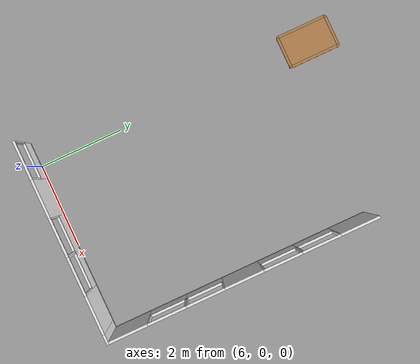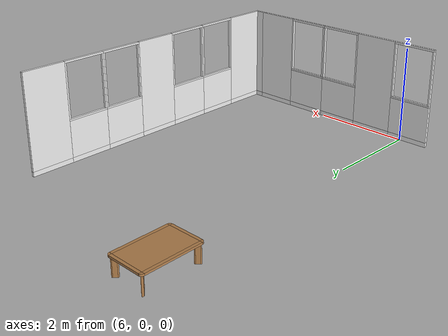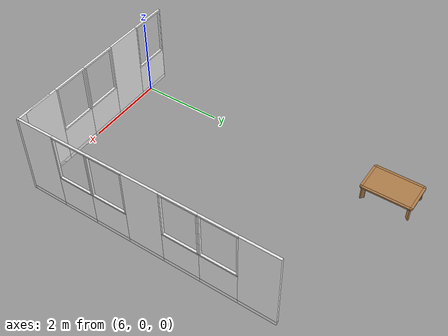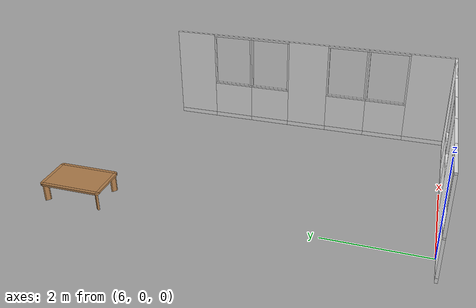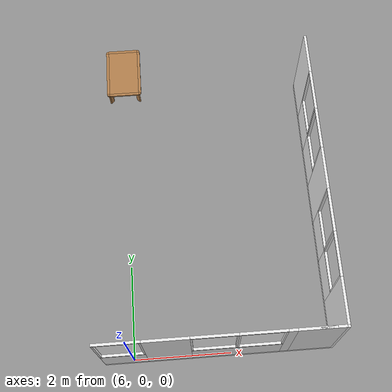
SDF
<sdf version="1.4">
 <world name="apartment">
  <model name="wall_x07y00">
   <link name="link">
    <inertial>
     <mass>50</mass>
     <inertia><ixx>1</ixx><ixy>0</ixy><ixz>0</ixz><iyy>1</iyy><iyz>0</iyz><izz>1</izz></inertia>
    </inertial>
    <visual name="bottom_frame">
     <pose>0 0 0.05 0 -0 0</pose>
     <geometry><box><size>0.055 0.9 0.1</size></box></geometry>
     <material>
      <script><uri>model://base_materials/color/scripts</uri><name>hsr_color/white</name></script>
     </material>
    </visual>
    <collision name="collision_bottom_frame">
     <pose>0 0 0.05 0 -0 0</pose>
     <geometry><box><size>0.055 0.9 0.1</size></box></geometry>
    </collision>
    <visual name="wall">
     <pose>0 0 0.4875 0 -0 0</pose>
     <geometry><box><size>0.055 0.9 0.775</size></box></geometry>
     <material>
      <script>
       <uri>model://base_materials/wall/scripts</uri>
       <uri>model://base_materials/wall/textures</uri>
       <name>wall/white_noise</name>
      </script>
     </material>
    </visual>
    <collision name="collision_wall">
     <pose>0 0 0.4875 0 -0 0</pose>
     <geometry><box><size>0.055 0.9 0.775</size></box></geometry>
    </collision>
    <visual name="center_frame">
     <pose>0 0 0.8925 0 -0 0</pose>
     <geometry><box><size>0.055 0.9 0.035</size></box></geometry>
     <material>
      <script><uri>model://base_materials/color/scripts</uri><name>hsr_color/white</name></script>
     </material>
    </visual>
    <collision name="collision_center_frame">
     <pose>0 0 0.8925 0 -0 0</pose>
     <geometry><box><size>0.055 0.9 0.035</size></box></geometry>
    </collision>
    <visual name="right_frame">
     <pose>0 0.4325 1.48 0 -0 0</pose>
     <geometry><box><size>0.055 0.035 1.14</size></box></geometry>
     <material>
      <script><uri>model://base_materials/color/scripts</uri><name>hsr_color/white</name></script>
     </material>
    </visual>
    <collision name="collision_right_frame">
     <pose>0 0.4325 1.48 0 -0 0</pose>
     <geometry><box><size>0.055 0.035 1.14</size></box></geometry>
    </collision>
    <visual name="left_frame">
     <pose>0 -0.4325 1.48 0 -0 0</pose>
     <geometry><box><size>0.055 0.035 1.14</size></box></geometry>
     <material>
      <script><uri>model://base_materials/color/scripts</uri><name>hsr_color/white</name></script>
     </material>
    </visual>
    <collision name="collision_left_frame">
     <pose>0 -0.4325 1.48 0 -0 0</pose>
     <geometry><box><size>0.055 0.035 1.14</size></box></geometry>
    </collision>
    <visual name="top_frame">
     <pose>0 0 2.07 0 -0 0</pose>
     <geometry><box><size>0.055 0.9 0.04</size></box></geometry>
     <material>
      <script><uri>model://base_materials/color/scripts</uri><name>hsr_color/white</name></script>
     </material>
    </visual>
    <collision name="collision_top_frame">
     <pose>0 0 2.07 0 -0 0</pose>
     <geometry><box><size>0.055 0.9 0.04</size></box></geometry>
    </collision>
    <velocity_decay><linear>0</linear><angular>0</angular></velocity_decay>
   </link>
   <static>1</static>
   <pose>5.85 -0.0275 0 0 -0 1.5708</pose>
  </model>
  <model name="wall_x08y00">
   <link name="link">
    <inertial>
     <mass>50</mass>
     <inertia><ixx>1</ixx><ixy>0</ixy><ixz>0</ixz><iyy>1</iyy><iyz>0</iyz><izz>1</izz></inertia>
    </inertial>
    <visual name="bottom_frame">
     <pose>0 0 0.05 0 -0 0</pose>
     <geometry><box><size>0.055 0.9 0.1</size></box></geometry>
     <material>
      <script><uri>model://base_materials/color/scripts</uri><name>hsr_color/white</name></script>
     </material>
    </visual>
    <collision name="collision_bottom_frame">
     <pose>0 0 0.05 0 -0 0</pose>
     <geometry><box><size>0.055 0.9 0.1</size></box></geometry>
    </collision>
    <visual name="wall">
     <pose>0 0 1.095 0 -0 0</pose>
     <geometry><box><size>0.055 0.9 1.99</size></box></geometry>
     <material>
      <script>
       <uri>model://base_materials/wall/scripts</uri>
       <uri>model://base_materials/wall/textures</uri>
       <name>wall/white_noise</name>
      </script>
     </material>
    </visual>
    <collision name="collision_wall">
     <pose>0 0 1.095 0 -0 0</pose>
     <geometry><box><size>0.055 0.9 1.99</size></box></geometry>
    </collision>
    <velocity_decay><linear>0</linear><angular>0</angular></velocity_decay>
   </link>
   <static>1</static>
   <pose>6.75 -0.0275 0 0 -0 1.5708</pose>
  </model>
  <model name="wall_x09y00">
   <link name="link">
    <inertial>
     <mass>50</mass>
     <inertia><ixx>1</ixx><ixy>0</ixy><ixz>0</ixz><iyy>1</iyy><iyz>0</iyz><izz>1</izz></inertia>
    </inertial>
    <visual name="bottom_frame">
     <pose>0 0 0.05 0 -0 0</pose>
     <geometry><box><size>0.055 0.9 0.1</size></box></geometry>
     <material>
      <script><uri>model://base_materials/color/scripts</uri><name>hsr_color/white</name></script>
     </material>
    </visual>
    <collision name="collision_bottom_frame">
     <pose>0 0 0.05 0 -0 0</pose>
     <geometry><box><size>0.055 0.9 0.1</size></box></geometry>
    </collision>
    <visual name="wall">
     <pose>0 0 0.4875 0 -0 0</pose>
     <geometry><box><size>0.055 0.9 0.775</size></box></geometry>
     <material>
      <script>
       <uri>model://base_materials/wall/scripts</uri>
       <uri>model://base_materials/wall/textures</uri>
       <name>wall/white_noise</name>
      </script>
     </material>
    </visual>
    <collision name="collision_wall">
     <pose>0 0 0.4875 0 -0 0</pose>
     <geometry><box><size>0.055 0.9 0.775</size></box></geometry>
    </collision>
    <visual name="center_frame">
     <pose>0 0 0.8925 0 -0 0</pose>
     <geometry><box><size>0.055 0.9 0.035</size></box></geometry>
     <material>
      <script><uri>model://base_materials/color/scripts</uri><name>hsr_color/white</name></script>
     </material>
    </visual>
    <collision name="collision_center_frame">
     <pose>0 0 0.8925 0 -0 0</pose>
     <geometry><box><size>0.055 0.9 0.035</size></box></geometry>
    </collision>
    <visual name="right_frame">
     <pose>0 0.4325 1.48 0 -0 0</pose>
     <geometry><box><size>0.055 0.035 1.14</size></box></geometry>
     <material>
      <script><uri>model://base_materials/color/scripts</uri><name>hsr_color/white</name></script>
     </material>
    </visual>
    <collision name="collision_right_frame">
     <pose>0 0.4325 1.48 0 -0 0</pose>
     <geometry><box><size>0.055 0.035 1.14</size></box></geometry>
    </collision>
    <visual name="left_frame">
     <pose>0 -0.4325 1.48 0 -0 0</pose>
     <geometry><box><size>0.055 0.035 1.14</size></box></geometry>
     <material>
      <script><uri>model://base_materials/color/scripts</uri><name>hsr_color/white</name></script>
     </material>
    </visual>
    <collision name="collision_left_frame">
     <pose>0 -0.4325 1.48 0 -0 0</pose>
     <geometry><box><size>0.055 0.035 1.14</size></box></geometry>
    </collision>
    <visual name="top_frame">
     <pose>0 0 2.07 0 -0 0</pose>
     <geometry><box><size>0.055 0.9 0.04</size></box></geometry>
     <material>
      <script><uri>model://base_materials/color/scripts</uri><name>hsr_color/white</name></script>
     </material>
    </visual>
    <collision name="collision_top_frame">
     <pose>0 0 2.07 0 -0 0</pose>
     <geometry><box><size>0.055 0.9 0.04</size></box></geometry>
    </collision>
    <velocity_decay><linear>0</linear><angular>0</angular></velocity_decay>
   </link>
   <static>1</static>
   <pose>7.65 -0.0275 0 0 -0 1.5708</pose>
  </model>
  <model name="wall_x10y00">
   <link name="link">
    <inertial>
     <mass>50</mass>
     <inertia><ixx>1</ixx><ixy>0</ixy><ixz>0</ixz><iyy>1</iyy><iyz>0</iyz><izz>1</izz></inertia>
    </inertial>
    <visual name="bottom_frame">
     <pose>0 0 0.05 0 -0 0</pose>
     <geometry><box><size>0.055 0.9 0.1</size></box></geometry>
     <material>
      <script><uri>model://base_materials/color/scripts</uri><name>hsr_color/white</name></script>
     </material>
    </visual>
    <collision name="collision_bottom_frame">
     <pose>0 0 0.05 0 -0 0</pose>
     <geometry><box><size>0.055 0.9 0.1</size></box></geometry>
    </collision>
    <visual name="wall">
     <pose>0 0 0.4875 0 -0 0</pose>
     <geometry><box><size>0.055 0.9 0.775</size></box></geometry>
     <material>
      <script>
       <uri>model://base_materials/wall/scripts</uri>
       <uri>model://base_materials/wall/textures</uri>
       <name>wall/white_noise</name>
      </script>
     </material>
    </visual>
    <collision name="collision_wall">
     <pose>0 0 0.4875 0 -0 0</pose>
     <geometry><box><size>0.055 0.9 0.775</size></box></geometry>
    </collision>
    <visual name="center_frame">
     <pose>0 0 0.8925 0 -0 0</pose>
     <geometry><box><size>0.055 0.9 0.035</size></box></geometry>
     <material>
      <script><uri>model://base_materials/color/scripts</uri><name>hsr_color/white</name></script>
     </material>
    </visual>
    <collision name="collision_center_frame">
     <pose>0 0 0.8925 0 -0 0</pose>
     <geometry><box><size>0.055 0.9 0.035</size></box></geometry>
    </collision>
    <visual name="right_frame">
     <pose>0 0.4325 1.48 0 -0 0</pose>
     <geometry><box><size>0.055 0.035 1.14</size></box></geometry>
     <material>
      <script><uri>model://base_materials/color/scripts</uri><name>hsr_color/white</name></script>
     </material>
    </visual>
    <collision name="collision_right_frame">
     <pose>0 0.4325 1.48 0 -0 0</pose>
     <geometry><box><size>0.055 0.035 1.14</size></box></geometry>
    </collision>
    <visual name="left_frame">
     <pose>0 -0.4325 1.48 0 -0 0</pose>
     <geometry><box><size>0.055 0.035 1.14</size></box></geometry>
     <material>
      <script><uri>model://base_materials/color/scripts</uri><name>hsr_color/white</name></script>
     </material>
    </visual>
    <collision name="collision_left_frame">
     <pose>0 -0.4325 1.48 0 -0 0</pose>
     <geometry><box><size>0.055 0.035 1.14</size></box></geometry>
    </collision>
    <visual name="top_frame">
     <pose>0 0 2.07 0 -0 0</pose>
     <geometry><box><size>0.055 0.9 0.04</size></box></geometry>
     <material>
      <script><uri>model://base_materials/color/scripts</uri><name>hsr_color/white</name></script>
     </material>
    </visual>
    <collision name="collision_top_frame">
     <pose>0 0 2.07 0 -0 0</pose>
     <geometry><box><size>0.055 0.9 0.04</size></box></geometry>
    </collision>
    <velocity_decay><linear>0</linear><angular>0</angular></velocity_decay>
   </link>
   <static>1</static>
   <pose>8.55 -0.0275 0 0 -0 1.5708</pose>
  </model>
  <model name="wall_x11y00">
   <link name="link">
    <inertial>
     <mass>50</mass>
     <inertia><ixx>1</ixx><ixy>0</ixy><ixz>0</ixz><iyy>1</iyy><iyz>0</iyz><izz>1</izz></inertia>
    </inertial>
    <visual name="bottom_frame">
     <pose>0 0 0.05 0 -0 0</pose>
     <geometry><box><size>0.055 0.9 0.1</size></box></geometry>
     <material>
      <script><uri>model://base_materials/color/scripts</uri><name>hsr_color/white</name></script>
     </material>
    </visual>
    <collision name="collision_bottom_frame">
     <pose>0 0 0.05 0 -0 0</pose>
     <geometry><box><size>0.055 0.9 0.1</size></box></geometry>
    </collision>
    <visual name="wall">
     <pose>0 0 1.095 0 -0 0</pose>
     <geometry><box><size>0.055 0.9 1.99</size></box></geometry>
     <material>
      <script>
       <uri>model://base_materials/wall/scripts</uri>
       <uri>model://base_materials/wall/textures</uri>
       <name>wall/white_noise</name>
      </script>
     </material>
    </visual>
    <collision name="collision_wall">
     <pose>0 0 1.095 0 -0 0</pose>
     <geometry><box><size>0.055 0.9 1.99</size></box></geometry>
    </collision>
    <velocity_decay><linear>0</linear><angular>0</angular></velocity_decay>
   </link>
   <static>1</static>
   <pose>9.45 -0.0275 0 0 -0 1.5708</pose>
  </model>
  <model name="wall_x12y00">
   <link name="link">
    <inertial>
     <mass>50</mass>
     <inertia><ixx>1</ixx><ixy>0</ixy><ixz>0</ixz><iyy>1</iyy><iyz>0</iyz><izz>1</izz></inertia>
    </inertial>
    <visual name="bottom_frame">
     <pose>0 0 0.05 0 -0 0</pose>
     <geometry><box><size>0.055 0.9 0.1</size></box></geometry>
     <material>
      <script><uri>model://base_materials/color/scripts</uri><name>hsr_color/white</name></script>
     </material>
    </visual>
    <collision name="collision_bottom_frame">
     <pose>0 0 0.05 0 -0 0</pose>
     <geometry><box><size>0.055 0.9 0.1</size></box></geometry>
    </collision>
    <visual name="wall">
     <pose>0 0 1.095 0 -0 0</pose>
     <geometry><box><size>0.055 0.9 1.99</size></box></geometry>
     <material>
      <script>
       <uri>model://base_materials/wall/scripts</uri>
       <uri>model://base_materials/wall/textures</uri>
       <name>wall/white_noise</name>
      </script>
     </material>
    </visual>
    <collision name="collision_wall">
     <pose>0 0 1.095 0 -0 0</pose>
     <geometry><box><size>0.055 0.9 1.99</size></box></geometry>
    </collision>
    <velocity_decay><linear>0</linear><angular>0</angular></velocity_decay>
   </link>
   <static>1</static>
   <pose>9.625 -0.0275 0 0 -0 1.5708</pose>
  </model>
  <model name="wall_x13y00">
   <link name="link">
    <inertial>
     <mass>50</mass>
     <inertia><ixx>1</ixx><ixy>0</ixy><ixz>0</ixz><iyy>1</iyy><iyz>0</iyz><izz>1</izz></inertia>
    </inertial>
    <visual name="_frame">
     <pose>0 0 1.045 0 -0 0</pose>
     <geometry><box><size>0.055 0.055 2.09</size></box></geometry>
     <material>
      <script><uri>model://base_materials/color/scripts</uri><name>hsr_color/white</name></script>
     </material>
    </visual>
    <collision name="collision_frame">
     <pose>0 0 1.045 0 -0 0</pose>
     <geometry><box><size>0.055 0.055 2.09</size></box></geometry>
    </collision>
    <velocity_decay><linear>0</linear><angular>0</angular></velocity_decay>
   </link>
   <static>1</static>
   <pose>10.1025 -0.0275 0 0 -0 0</pose>
  </model>
  <model name="wall_x13y01">
   <link name="link">
    <inertial>
     <mass>50</mass>
     <inertia><ixx>1</ixx><ixy>0</ixy><ixz>0</ixz><iyy>1</iyy><iyz>0</iyz><izz>1</izz></inertia>
    </inertial>
    <visual name="bottom_frame">
     <pose>0 0 0.05 0 -0 0</pose>
     <geometry><box><size>0.055 0.9 0.1</size></box></geometry>
     <material>
      <script><uri>model://base_materials/color/scripts</uri><name>hsr_color/white</name></script>
     </material>
    </visual>
    <collision name="collision_bottom_frame">
     <pose>0 0 0.05 0 -0 0</pose>
     <geometry><box><size>0.055 0.9 0.1</size></box></geometry>
    </collision>
    <visual name="wall">
     <pose>0 0 1.095 0 -0 0</pose>
     <geometry><box><size>0.055 0.9 1.99</size></box></geometry>
     <material>
      <script>
       <uri>model://base_materials/wall/scripts</uri>
       <uri>model://base_materials/wall/textures</uri>
       <name>wall/white_noise</name>
      </script>
     </material>
    </visual>
    <collision name="collision_wall">
     <pose>0 0 1.095 0 -0 0</pose>
     <geometry><box><size>0.055 0.9 1.99</size></box></geometry>
    </collision>
    <velocity_decay><linear>0</linear><angular>0</angular></velocity_decay>
   </link>
   <static>1</static>
   <pose>10.1025 0.45 0 0 -0 0</pose>
  </model>
  <model name="wall_x13y02">
   <link name="link">
    <inertial>
     <mass>50</mass>
     <inertia><ixx>1</ixx><ixy>0</ixy><ixz>0</ixz><iyy>1</iyy><iyz>0</iyz><izz>1</izz></inertia>
    </inertial>
    <visual name="bottom_frame">
     <pose>0 0 0.05 0 -0 0</pose>
     <geometry><box><size>0.055 0.9 0.1</size></box></geometry>
     <material>
      <script><uri>model://base_materials/color/scripts</uri><name>hsr_color/white</name></script>
     </material>
    </visual>
    <collision name="collision_bottom_frame">
     <pose>0 0 0.05 0 -0 0</pose>
     <geometry><box><size>0.055 0.9 0.1</size></box></geometry>
    </collision>
    <visual name="wall">
     <pose>0 0 0.4875 0 -0 0</pose>
     <geometry><box><size>0.055 0.9 0.775</size></box></geometry>
     <material>
      <script>
       <uri>model://base_materials/wall/scripts</uri>
       <uri>model://base_materials/wall/textures</uri>
       <name>wall/white_noise</name>
      </script>
     </material>
    </visual>
    <collision name="collision_wall">
     <pose>0 0 0.4875 0 -0 0</pose>
     <geometry><box><size>0.055 0.9 0.775</size></box></geometry>
    </collision>
    <visual name="center_frame">
     <pose>0 0 0.8925 0 -0 0</pose>
     <geometry><box><size>0.055 0.9 0.035</size></box></geometry>
     <material>
      <script><uri>model://base_materials/color/scripts</uri><name>hsr_color/white</name></script>
     </material>
    </visual>
    <collision name="collision_center_frame">
     <pose>0 0 0.8925 0 -0 0</pose>
     <geometry><box><size>0.055 0.9 0.035</size></box></geometry>
    </collision>
    <visual name="right_frame">
     <pose>0 0.4325 1.48 0 -0 0</pose>
     <geometry><box><size>0.055 0.035 1.14</size></box></geometry>
     <material>
      <script><uri>model://base_materials/color/scripts</uri><name>hsr_color/white</name></script>
     </material>
    </visual>
    <collision name="collision_right_frame">
     <pose>0 0.4325 1.48 0 -0 0</pose>
     <geometry><box><size>0.055 0.035 1.14</size></box></geometry>
    </collision>
    <visual name="left_frame">
     <pose>0 -0.4325 1.48 0 -0 0</pose>
     <geometry><box><size>0.055 0.035 1.14</size></box></geometry>
     <material>
      <script><uri>model://base_materials/color/scripts</uri><name>hsr_color/white</name></script>
     </material>
    </visual>
    <collision name="collision_left_frame">
     <pose>0 -0.4325 1.48 0 -0 0</pose>
     <geometry><box><size>0.055 0.035 1.14</size></box></geometry>
    </collision>
    <visual name="top_frame">
     <pose>0 0 2.07 0 -0 0</pose>
     <geometry><box><size>0.055 0.9 0.04</size></box></geometry>
     <material>
      <script><uri>model://base_materials/color/scripts</uri><name>hsr_color/white</name></script>
     </material>
    </visual>
    <collision name="collision_top_frame">
     <pose>0 0 2.07 0 -0 0</pose>
     <geometry><box><size>0.055 0.9 0.04</size></box></geometry>
    </collision>
    <velocity_decay><linear>0</linear><angular>0</angular></velocity_decay>
   </link>
   <static>1</static>
   <pose>10.1025 1.35 0 0 -0 0</pose>
  </model>
  <model name="wall_x13y03">
   <link name="link">
    <inertial>
     <mass>50</mass>
     <inertia><ixx>1</ixx><ixy>0</ixy><ixz>0</ixz><iyy>1</iyy><iyz>0</iyz><izz>1</izz></inertia>
    </inertial>
    <visual name="bottom_frame">
     <pose>0 0 0.05 0 -0 0</pose>
     <geometry><box><size>0.055 0.9 0.1</size></box></geometry>
     <material>
      <script><uri>model://base_materials/color/scripts</uri><name>hsr_color/white</name></script>
     </material>
    </visual>
    <collision name="collision_bottom_frame">
     <pose>0 0 0.05 0 -0 0</pose>
     <geometry><box><size>0.055 0.9 0.1</size></box></geometry>
    </collision>
    <visual name="wall">
     <pose>0 0 0.4875 0 -0 0</pose>
     <geometry><box><size>0.055 0.9 0.775</size></box></geometry>
     <material>
      <script>
       <uri>model://base_materials/wall/scripts</uri>
       <uri>model://base_materials/wall/textures</uri>
       <name>wall/white_noise</name>
      </script>
     </material>
    </visual>
    <collision name="collision_wall">
     <pose>0 0 0.4875 0 -0 0</pose>
     <geometry><box><size>0.055 0.9 0.775</size></box></geometry>
    </collision>
    <visual name="center_frame">
     <pose>0 0 0.8925 0 -0 0</pose>
     <geometry><box><size>0.055 0.9 0.035</size></box></geometry>
     <material>
      <script><uri>model://base_materials/color/scripts</uri><name>hsr_color/white</name></script>
     </material>
    </visual>
    <collision name="collision_center_frame">
     <pose>0 0 0.8925 0 -0 0</pose>
     <geometry><box><size>0.055 0.9 0.035</size></box></geometry>
    </collision>
    <visual name="right_frame">
     <pose>0 0.4325 1.48 0 -0 0</pose>
     <geometry><box><size>0.055 0.035 1.14</size></box></geometry>
     <material>
      <script><uri>model://base_materials/color/scripts</uri><name>hsr_color/white</name></script>
     </material>
    </visual>
    <collision name="collision_right_frame">
     <pose>0 0.4325 1.48 0 -0 0</pose>
     <geometry><box><size>0.055 0.035 1.14</size></box></geometry>
    </collision>
    <visual name="left_frame">
     <pose>0 -0.4325 1.48 0 -0 0</pose>
     <geometry><box><size>0.055 0.035 1.14</size></box></geometry>
     <material>
      <script><uri>model://base_materials/color/scripts</uri><name>hsr_color/white</name></script>
     </material>
    </visual>
    <collision name="collision_left_frame">
     <pose>0 -0.4325 1.48 0 -0 0</pose>
     <geometry><box><size>0.055 0.035 1.14</size></box></geometry>
    </collision>
    <visual name="top_frame">
     <pose>0 0 2.07 0 -0 0</pose>
     <geometry><box><size>0.055 0.9 0.04</size></box></geometry>
     <material>
      <script><uri>model://base_materials/color/scripts</uri><name>hsr_color/white</name></script>
     </material>
    </visual>
    <collision name="collision_top_frame">
     <pose>0 0 2.07 0 -0 0</pose>
     <geometry><box><size>0.055 0.9 0.04</size></box></geometry>
    </collision>
    <velocity_decay><linear>0</linear><angular>0</angular></velocity_decay>
   </link>
   <static>1</static>
   <pose>10.1025 2.25 0 0 -0 0</pose>
  </model>
  <model name="wall_x13y04">
   <link name="link">
    <inertial>
     <mass>50</mass>
     <inertia><ixx>1</ixx><ixy>0</ixy><ixz>0</ixz><iyy>1</iyy><iyz>0</iyz><izz>1</izz></inertia>
    </inertial>
    <visual name="bottom_frame">
     <pose>0 0 0.05 0 -0 0</pose>
     <geometry><box><size>0.055 0.9 0.1</size></box></geometry>
     <material>
      <script><uri>model://base_materials/color/scripts</uri><name>hsr_color/white</name></script>
     </material>
    </visual>
    <collision name="collision_bottom_frame">
     <pose>0 0 0.05 0 -0 0</pose>
     <geometry><box><size>0.055 0.9 0.1</size></box></geometry>
    </collision>
    <visual name="wall">
     <pose>0 0 1.095 0 -0 0</pose>
     <geometry><box><size>0.055 0.9 1.99</size></box></geometry>
     <material>
      <script>
       <uri>model://base_materials/wall/scripts</uri>
       <uri>model://base_materials/wall/textures</uri>
       <name>wall/white_noise</name>
      </script>
     </material>
    </visual>
    <collision name="collision_wall">
     <pose>0 0 1.095 0 -0 0</pose>
     <geometry><box><size>0.055 0.9 1.99</size></box></geometry>
    </collision>
    <velocity_decay><linear>0</linear><angular>0</angular></velocity_decay>
   </link>
   <static>1</static>
   <pose>10.1025 3.15 0 0 -0 0</pose>
  </model>
  <model name="wall_x13y05">
   <link name="link">
    <inertial>
     <mass>50</mass>
     <inertia><ixx>1</ixx><ixy>0</ixy><ixz>0</ixz><iyy>1</iyy><iyz>0</iyz><izz>1</izz></inertia>
    </inertial>
    <visual name="bottom_frame">
     <pose>0 0 0.05 0 -0 0</pose>
     <geometry><box><size>0.055 0.9 0.1</size></box></geometry>
     <material>
      <script><uri>model://base_materials/color/scripts</uri><name>hsr_color/white</name></script>
     </material>
    </visual>
    <collision name="collision_bottom_frame">
     <pose>0 0 0.05 0 -0 0</pose>
     <geometry><box><size>0.055 0.9 0.1</size></box></geometry>
    </collision>
    <visual name="wall">
     <pose>0 0 0.4875 0 -0 0</pose>
     <geometry><box><size>0.055 0.9 0.775</size></box></geometry>
     <material>
      <script>
       <uri>model://base_materials/wall/scripts</uri>
       <uri>model://base_materials/wall/textures</uri>
       <name>wall/white_noise</name>
      </script>
     </material>
    </visual>
    <collision name="collision_wall">
     <pose>0 0 0.4875 0 -0 0</pose>
     <geometry><box><size>0.055 0.9 0.775</size></box></geometry>
    </collision>
    <visual name="center_frame">
     <pose>0 0 0.8925 0 -0 0</pose>
     <geometry><box><size>0.055 0.9 0.035</size></box></geometry>
     <material>
      <script><uri>model://base_materials/color/scripts</uri><name>hsr_color/white</name></script>
     </material>
    </visual>
    <collision name="collision_center_frame">
     <pose>0 0 0.8925 0 -0 0</pose>
     <geometry><box><size>0.055 0.9 0.035</size></box></geometry>
    </collision>
    <visual name="right_frame">
     <pose>0 0.4325 1.48 0 -0 0</pose>
     <geometry><box><size>0.055 0.035 1.14</size></box></geometry>
     <material>
      <script><uri>model://base_materials/color/scripts</uri><name>hsr_color/white</name></script>
     </material>
    </visual>
    <collision name="collision_right_frame">
     <pose>0 0.4325 1.48 0 -0 0</pose>
     <geometry><box><size>0.055 0.035 1.14</size></box></geometry>
    </collision>
    <visual name="left_frame">
     <pose>0 -0.4325 1.48 0 -0 0</pose>
     <geometry><box><size>0.055 0.035 1.14</size></box></geometry>
     <material>
      <script><uri>model://base_materials/color/scripts</uri><name>hsr_color/white</name></script>
     </material>
    </visual>
    <collision name="collision_left_frame">
     <pose>0 -0.4325 1.48 0 -0 0</pose>
     <geometry><box><size>0.055 0.035 1.14</size></box></geometry>
    </collision>
    <visual name="top_frame">
     <pose>0 0 2.07 0 -0 0</pose>
     <geometry><box><size>0.055 0.9 0.04</size></box></geometry>
     <material>
      <script><uri>model://base_materials/color/scripts</uri><name>hsr_color/white</name></script>
     </material>
    </visual>
    <collision name="collision_top_frame">
     <pose>0 0 2.07 0 -0 0</pose>
     <geometry><box><size>0.055 0.9 0.04</size></box></geometry>
    </collision>
    <velocity_decay><linear>0</linear><angular>0</angular></velocity_decay>
   </link>
   <static>1</static>
   <pose>10.1025 4.05 0 0 -0 0</pose>
  </model>
  <model name="wall_x13y06">
   <link name="link">
    <inertial>
     <mass>50</mass>
     <inertia><ixx>1</ixx><ixy>0</ixy><ixz>0</ixz><iyy>1</iyy><iyz>0</iyz><izz>1</izz></inertia>
    </inertial>
    <visual name="bottom_frame">
     <pose>0 0 0.05 0 -0 0</pose>
     <geometry><box><size>0.055 0.9 0.1</size></box></geometry>
     <material>
      <script><uri>model://base_materials/color/scripts</uri><name>hsr_color/white</name></script>
     </material>
    </visual>
    <collision name="collision_bottom_frame">
     <pose>0 0 0.05 0 -0 0</pose>
     <geometry><box><size>0.055 0.9 0.1</size></box></geometry>
    </collision>
    <visual name="wall">
     <pose>0 0 0.4875 0 -0 0</pose>
     <geometry><box><size>0.055 0.9 0.775</size></box></geometry>
     <material>
      <script>
       <uri>model://base_materials/wall/scripts</uri>
       <uri>model://base_materials/wall/textures</uri>
       <name>wall/white_noise</name>
      </script>
     </material>
    </visual>
    <collision name="collision_wall">
     <pose>0 0 0.4875 0 -0 0</pose>
     <geometry><box><size>0.055 0.9 0.775</size></box></geometry>
    </collision>
    <visual name="center_frame">
     <pose>0 0 0.8925 0 -0 0</pose>
     <geometry><box><size>0.055 0.9 0.035</size></box></geometry>
     <material>
      <script><uri>model://base_materials/color/scripts</uri><name>hsr_color/white</name></script>
     </material>
    </visual>
    <collision name="collision_center_frame">
     <pose>0 0 0.8925 0 -0 0</pose>
     <geometry><box><size>0.055 0.9 0.035</size></box></geometry>
    </collision>
    <visual name="right_frame">
     <pose>0 0.4325 1.48 0 -0 0</pose>
     <geometry><box><size>0.055 0.035 1.14</size></box></geometry>
     <material>
      <script><uri>model://base_materials/color/scripts</uri><name>hsr_color/white</name></script>
     </material>
    </visual>
    <collision name="collision_right_frame">
     <pose>0 0.4325 1.48 0 -0 0</pose>
     <geometry><box><size>0.055 0.035 1.14</size></box></geometry>
    </collision>
    <visual name="left_frame">
     <pose>0 -0.4325 1.48 0 -0 0</pose>
     <geometry><box><size>0.055 0.035 1.14</size></box></geometry>
     <material>
      <script><uri>model://base_materials/color/scripts</uri><name>hsr_color/white</name></script>
     </material>
    </visual>
    <collision name="collision_left_frame">
     <pose>0 -0.4325 1.48 0 -0 0</pose>
     <geometry><box><size>0.055 0.035 1.14</size></box></geometry>
    </collision>
    <visual name="top_frame">
     <pose>0 0 2.07 0 -0 0</pose>
     <geometry><box><size>0.055 0.9 0.04</size></box></geometry>
     <material>
      <script><uri>model://base_materials/color/scripts</uri><name>hsr_color/white</name></script>
     </material>
    </visual>
    <collision name="collision_top_frame">
     <pose>0 0 2.07 0 -0 0</pose>
     <geometry><box><size>0.055 0.9 0.04</size></box></geometry>
    </collision>
    <velocity_decay><linear>0</linear><angular>0</angular></velocity_decay>
   </link>
   <static>1</static>
   <pose>10.1025 4.95 0 0 -0 0</pose>
  </model>
  <model name="wall_x13y07">
   <link name="link">
    <inertial>
     <mass>50</mass>
     <inertia><ixx>1</ixx><ixy>0</ixy><ixz>0</ixz><iyy>1</iyy><iyz>0</iyz><izz>1</izz></inertia>
    </inertial>
    <visual name="bottom_frame">
     <pose>0 0 0.05 0 -0 0</pose>
     <geometry><box><size>0.055 0.9 0.1</size></box></geometry>
     <material>
      <script><uri>model://base_materials/color/scripts</uri><name>hsr_color/white</name></script>
     </material>
    </visual>
    <collision name="collision_bottom_frame">
     <pose>0 0 0.05 0 -0 0</pose>
     <geometry><box><size>0.055 0.9 0.1</size></box></geometry>
    </collision>
    <visual name="wall">
     <pose>0 0 1.095 0 -0 0</pose>
     <geometry><box><size>0.055 0.9 1.99</size></box></geometry>
     <material>
      <script>
       <uri>model://base_materials/wall/scripts</uri>
       <uri>model://base_materials/wall/textures</uri>
       <name>wall/white_noise</name>
      </script>
     </material>
    </visual>
    <collision name="collision_wall">
     <pose>0 0 1.095 0 -0 0</pose>
     <geometry><box><size>0.055 0.9 1.99</size></box></geometry>
    </collision>
    <velocity_decay><linear>0</linear><angular>0</angular></velocity_decay>
   </link>
   <static>1</static>
   <pose>10.1025 5.85 0 0 -0 0</pose>
  </model>
  <model name="kitchen_lowtable">
   <link name="link">
    <inertial>
     <mass>10</mass>
     <inertia><ixx>1</ixx><ixy>0</ixy><ixz>0</ixz><iyy>1</iyy><iyz>0</iyz><izz>1</izz></inertia>
    </inertial>
    <visual name="center_board">
     <pose>0 0 0.38 0 -0 0</pose>
     <geometry><box><size>0.68 1.13 0.04</size></box></geometry>
     <material>
      <script><uri>model://base_materials/wood/scripts/wood.material</uri><name>base_materials/wood</name></script>
     </material>
    </visual>
    <collision name="collision_center_board">
     <pose>0 0 0.38 0 -0 0</pose>
     <geometry><box><size>0.68 1.13 0.04</size></box></geometry>
    </collision>
    <visual name="front_board">
     <pose>0.37 0 0.38 0 -0 0</pose>
     <geometry><box><size>0.06 1.13 0.04</size></box></geometry>
     <material>
      <script><uri>model://base_materials/wood/scripts/wood.material</uri><name>base_materials/wood</name></script>
     </material>
    </visual>
    <collision name="collision_front_board">
     <pose>0.37 0 0.38 0 -0 0</pose>
     <geometry><box><size>0.06 1.13 0.04</size></box></geometry>
    </collision>
    <visual name="back_board">
     <pose>-0.37 0 0.38 0 -0 0</pose>
     <geometry><box><size>0.06 1.13 0.04</size></box></geometry>
     <material>
      <script><uri>model://base_materials/wood/scripts/wood.material</uri><name>base_materials/wood</name></script>
     </material>
    </visual>
    <collision name="collision_back_board">
     <pose>-0.37 0 0.38 0 -0 0</pose>
     <geometry><box><size>0.06 1.13 0.04</size></box></geometry>
    </collision>
    <visual name="right_board">
     <pose>0 0.595 0.38 0 -0 0</pose>
     <geometry><box><size>0.68 0.06 0.04</size></box></geometry>
     <material>
      <script><uri>model://base_materials/wood/scripts/wood.material</uri><name>base_materials/wood</name></script>
     </material>
    </visual>
    <collision name="collision_right_board">
     <pose>0 0.595 0.38 0 -0 0</pose>
     <geometry><box><size>0.68 0.06 0.04</size></box></geometry>
    </collision>
    <visual name="left_board">
     <pose>0 -0.595 0.38 0 -0 0</pose>
     <geometry><box><size>0.68 0.06 0.04</size></box></geometry>
     <material>
      <script><uri>model://base_materials/wood/scripts/wood.material</uri><name>base_materials/wood</name></script>
     </material>
    </visual>
    <collision name="collision_left_board">
     <pose>0 -0.595 0.38 0 -0 0</pose>
     <geometry><box><size>0.68 0.06 0.04</size></box></geometry>
    </collision>
    <visual name="front_right_corner_board">
     <pose>0.34 0.565 0.38 0 -0 0</pose>
     <geometry><cylinder><radius>0.06</radius><length>0.039</length></cylinder></geometry>
     <material>
      <script><uri>model://base_materials/wood/scripts/wood.material</uri><name>base_materials/wood</name></script>
     </material>
    </visual>
    <collision name="collision_front_right_corner_board">
     <pose>0.34 0.565 0.38 0 -0 0</pose>
     <geometry><cylinder><radius>0.06</radius><length>0.039</length></cylinder></geometry>
    </collision>
    <visual name="front_left_corner_board">
     <pose>0.34 -0.565 0.38 0 -0 0</pose>
     <geometry><cylinder><radius>0.06</radius><length>0.039</length></cylinder></geometry>
     <material>
      <script><uri>model://base_materials/wood/scripts/wood.material</uri><name>base_materials/wood</name></script>
     </material>
    </visual>
    <collision name="collision_front_left_corner_board">
     <pose>0.34 -0.565 0.38 0 -0 0</pose>
     <geometry><cylinder><radius>0.06</radius><length>0.039</length></cylinder></geometry>
    </collision>
    <visual name="front_back_right_corner_board">
     <pose>-0.34 0.565 0.38 0 -0 0</pose>
     <geometry><cylinder><radius>0.06</radius><length>0.039</length></cylinder></geometry>
     <material>
      <script><uri>model://base_materials/wood/scripts/wood.material</uri><name>base_materials/wood</name></script>
     </material>
    </visual>
    <collision name="collision_back_right_corner_board">
     <pose>-0.34 0.565 0.38 0 -0 0</pose>
     <geometry><cylinder><radius>0.06</radius><length>0.039</length></cylinder></geometry>
    </collision>
    <visual name="front_back_left_corner_board">
     <pose>-0.34 -0.565 0.38 0 -0 0</pose>
     <geometry><cylinder><radius>0.06</radius><length>0.039</length></cylinder></geometry>
     <material>
      <script><uri>model://base_materials/wood/scripts/wood.material</uri><name>base_materials/wood</name></script>
     </material>
    </visual>
    <collision name="collision_back_left_corner_board">
     <pose>-0.34 -0.565 0.38 0 -0 0</pose>
     <geometry><cylinder><radius>0.06</radius><length>0.039</length></cylinder></geometry>
    </collision>
    <visual name="front_left_corner_frame1">
     <pose>0.345858 -0.57086 0.18 0 -0 0</pose>
     <geometry><cylinder><radius>0.02</radius><length>0.36</length></cylinder></geometry>
     <material>
      <script><uri>model://base_materials/wood/scripts/wood.material</uri><name>base_materials/wood</name></script>
     </material>
    </visual>
    <collision name="collision_front_left_corner_frame1">
     <pose>0.345858 -0.57086 0.18 0 -0 0</pose>
     <geometry><cylinder><radius>0.02</radius><length>0.36</length></cylinder></geometry>
    </collision>
    <visual name="front_left_corner_frame2">
     <pose>0.317574 -0.54257 0.18 0 -0 0.7854</pose>
     <geometry><box><size>0.04 0.08 0.36</size></box></geometry>
     <material>
      <script><uri>model://base_materials/wood/scripts/wood.material</uri><name>base_materials/wood</name></script>
     </material>
    </visual>
    <collision name="collision_front_left_corner_frame2">
     <pose>0.317574 -0.54257 0.18 0 -0 0.7854</pose>
     <geometry><box><size>0.04 0.08 0.36</size></box></geometry>
    </collision>
    <visual name="front_left_corner_frame3">
     <pose>0.289289 -0.51429 0.18 0 -0 0</pose>
     <geometry><cylinder><radius>0.02</radius><length>0.36</length></cylinder></geometry>
     <material>
      <script><uri>model://base_materials/wood/scripts/wood.material</uri><name>base_materials/wood</name></script>
     </material>
    </visual>
    <collision name="collision_front_left_corner_frame3">
     <pose>0.289289 -0.51429 0.18 0 -0 0</pose>
     <geometry><cylinder><radius>0.02</radius><length>0.36</length></cylinder></geometry>
    </collision>
    <visual name="front_right_corner_frame1">
     <pose>0.345858 0.57086 0.18 0 -0 0</pose>
     <geometry><cylinder><radius>0.02</radius><length>0.36</length></cylinder></geometry>
     <material>
      <script><uri>model://base_materials/wood/scripts/wood.material</uri><name>base_materials/wood</name></script>
     </material>
    </visual>
    <collision name="collision_front_right_corner_frame1">
     <pose>0.345858 0.57086 0.18 0 -0 0</pose>
     <geometry><cylinder><radius>0.02</radius><length>0.36</length></cylinder></geometry>
    </collision>
    <visual name="front_right_corner_frame2">
     <pose>0.317574 0.54257 0.18 0 0 -0.7854</pose>
     <geometry><box><size>0.04 0.08 0.36</size></box></geometry>
     <material>
      <script><uri>model://base_materials/wood/scripts/wood.material</uri><name>base_materials/wood</name></script>
     </material>
    </visual>
    <collision name="collision_front_right_corner_frame2">
     <pose>0.317574 0.54257 0.18 0 0 -0.7854</pose>
     <geometry><box><size>0.04 0.08 0.36</size></box></geometry>
    </collision>
    <visual name="front_right_corner_frame3">
     <pose>0.289289 0.51429 0.18 0 -0 0</pose>
     <geometry><cylinder><radius>0.02</radius><length>0.36</length></cylinder></geometry>
     <material>
      <script><uri>model://base_materials/wood/scripts/wood.material</uri><name>base_materials/wood</name></script>
     </material>
    </visual>
    <collision name="collision_front_right_corner_frame3">
     <pose>0.289289 0.51429 0.18 0 -0 0</pose>
     <geometry><cylinder><radius>0.02</radius><length>0.36</length></cylinder></geometry>
    </collision>
    <visual name="back_left_corner_frame1">
     <pose>-0.345858 -0.57086 0.18 0 -0 0</pose>
     <geometry><cylinder><radius>0.02</radius><length>0.36</length></cylinder></geometry>
     <material>
      <script><uri>model://base_materials/wood/scripts/wood.material</uri><name>base_materials/wood</name></script>
     </material>
    </visual>
    <collision name="collision_back_left_corner_frame1">
     <pose>-0.345858 -0.57086 0.18 0 -0 0</pose>
     <geometry><cylinder><radius>0.02</radius><length>0.36</length></cylinder></geometry>
    </collision>
    <visual name="back_left_corner_frame2">
     <pose>-0.317574 -0.54257 0.18 0 0 -0.7854</pose>
     <geometry><box><size>0.04 0.08 0.36</size></box></geometry>
     <material>
      <script><uri>model://base_materials/wood/scripts/wood.material</uri><name>base_materials/wood</name></script>
     </material>
    </visual>
    <collision name="collision_back_left_corner_frame2">
     <pose>-0.317574 -0.54257 0.18 0 0 -0.7854</pose>
     <geometry><box><size>0.04 0.08 0.36</size></box></geometry>
    </collision>
    <visual name="back_left_corner_frame3">
     <pose>-0.289289 -0.51429 0.18 0 -0 0</pose>
     <geometry><cylinder><radius>0.02</radius><length>0.36</length></cylinder></geometry>
     <material>
      <script><uri>model://base_materials/wood/scripts/wood.material</uri><name>base_materials/wood</name></script>
     </material>
    </visual>
    <collision name="collision_back_left_corner_frame3">
     <pose>-0.289289 -0.51429 0.18 0 -0 0</pose>
     <geometry><cylinder><radius>0.02</radius><length>0.36</length></cylinder></geometry>
    </collision>
    <visual name="back_right_corner_frame1">
     <pose>-0.345858 0.57086 0.18 0 -0 0</pose>
     <geometry><cylinder><radius>0.02</radius><length>0.36</length></cylinder></geometry>
     <material>
      <script><uri>model://base_materials/wood/scripts/wood.material</uri><name>base_materials/wood</name></script>
     </material>
    </visual>
    <collision name="collision_back_right_corner_frame1">
     <pose>-0.345858 0.57086 0.18 0 -0 0</pose>
     <geometry><cylinder><radius>0.02</radius><length>0.36</length></cylinder></geometry>
    </collision>
    <visual name="back_right_corner_frame2">
     <pose>-0.317574 0.54257 0.18 0 -0 0.7854</pose>
     <geometry><box><size>0.04 0.08 0.36</size></box></geometry>
     <material>
      <script><uri>model://base_materials/wood/scripts/wood.material</uri><name>base_materials/wood</name></script>
     </material>
    </visual>
    <collision name="collision_back_right_corner_frame2">
     <pose>-0.317574 0.54257 0.18 0 -0 0.7854</pose>
     <geometry><box><size>0.04 0.08 0.36</size></box></geometry>
    </collision>
    <visual name="back_right_corner_frame3">
     <pose>-0.289289 0.51429 0.18 0 -0 0</pose>
     <geometry><cylinder><radius>0.02</radius><length>0.36</length></cylinder></geometry>
     <material>
      <script><uri>model://base_materials/wood/scripts/wood.material</uri><name>base_materials/wood</name></script>
     </material>
    </visual>
    <collision name="collision_back_right_corner_frame3">
     <pose>-0.289289 0.51429 0.18 0 -0 0</pose>
     <geometry><cylinder><radius>0.02</radius><length>0.36</length></cylinder></geometry>
    </collision>
    <velocity_decay><linear>0</linear><angular>0</angular></velocity_decay>
   </link>
   <static>1</static>
   <pose>5.98991 6.744 0.01 0 -0 0</pose>
  </model>
 </world>
</sdf>
